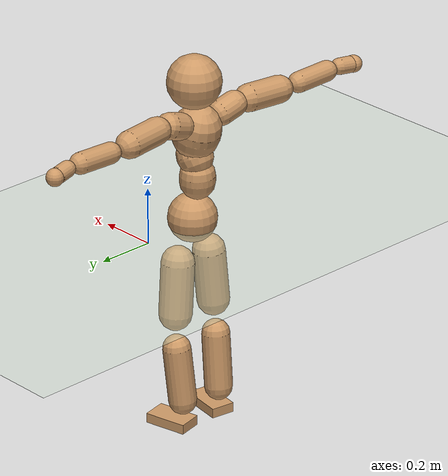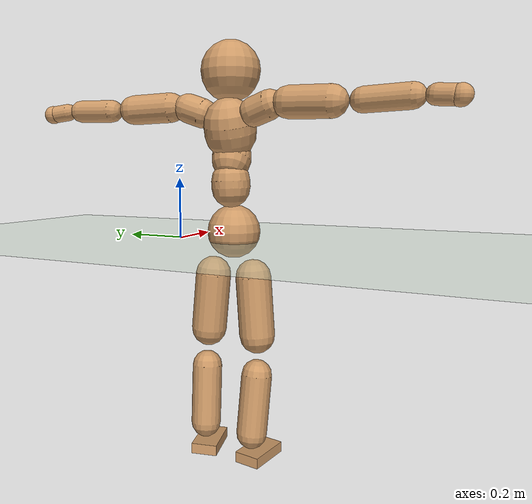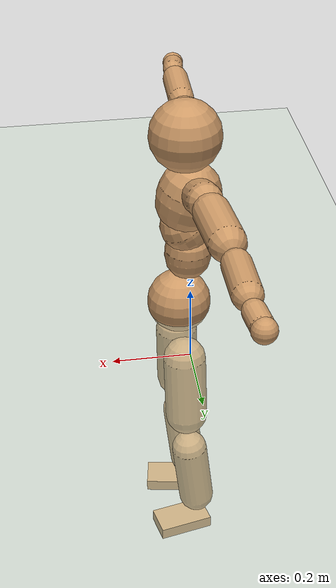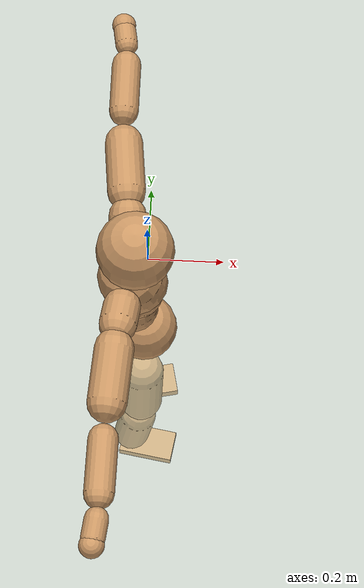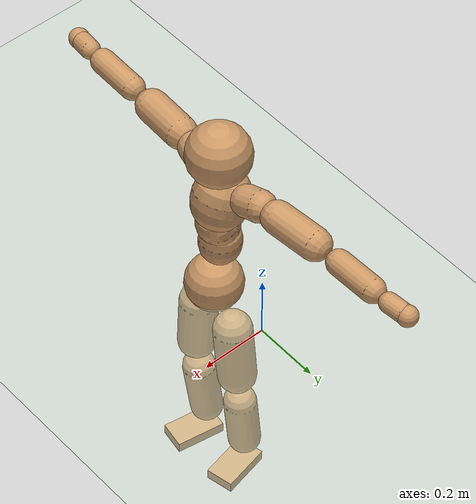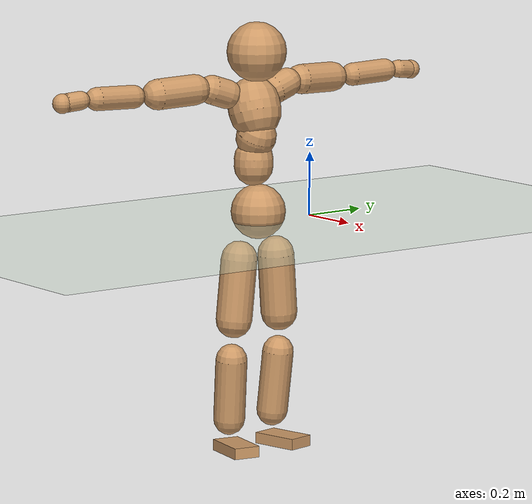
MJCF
<mujoco model="humanoid">
  <compiler coordinate="local"/>
  <default>
    <joint damping="0.0" armature="0.01" stiffness="0.0" limited="true"/>
    <geom conaffinity="1" condim="3" contype="7" margin="0.001" rgba="0.8 0.6 .4 1"/>
  </default>
  <asset>
    <texture type="skybox" builtin="gradient" rgb1=".4 .5 .6" rgb2="0 0 0" width="100" height="100"/>
    <texture builtin="flat" height="1278" mark="cross" markrgb="1 1 1" name="texgeom" random="0.01" rgb1="0.8 0.6 0.4" rgb2="0.8 0.6 0.4" type="cube" width="127"/>
    <texture builtin="checker" height="100" name="texplane" rgb1="0 0 0" rgb2="0.8 0.8 0.8" type="2d" width="100"/>
    <material name="MatPlane" reflectance="0.5" shininess="1" specular="1" texrepeat="60 60" texture="texplane"/>
    <material name="geom" texture="texgeom" texuniform="true"/>
  </asset>
  <worldbody>
    <light cutoff="100" diffuse="1 1 1" dir="-0 0 -1.3" directional="true" exponent="1" pos="0 0 1.3" specular=".1 .1 .1"/>
    <geom conaffinity="1" condim="3" name="floor" pos="0 0 0" rgba="0.8 0.9 0.8 1" size="100 100 .2" type="plane" material="MatPlane"/>
    <body name="Pelvis" pos="-0.0006 -0.2011 0.0315">
      <freejoint name="Pelvis"/>
      <geom type="sphere" contype="1" conaffinity="1" density="500" size="0.0859" pos="0.0000 0.0000 0.0000" name="Pelvis"/>
      <body name="L_Hip" pos="-0.0037 0.0674 -0.081">
        <joint name="L_Hip_x" type="hinge" pos="0 0 0" axis="1 0 0" stiffness="800" damping="80" armature="0.02" range="-180.0000 180.0000"/>
        <joint name="L_Hip_y" type="hinge" pos="0 0 0" axis="0 1 0" stiffness="800" damping="80" armature="0.02" range="-180.0000 180.0000"/>
        <joint name="L_Hip_z" type="hinge" pos="0 0 0" axis="0 0 1" stiffness="800" damping="80" armature="0.02" range="-180.0000 180.0000"/>
        <geom type="capsule" contype="1" conaffinity="1" density="500" fromto="-0.0011 0.0050 -0.0625 -0.0044 0.0200 -0.2500" size="0.0578" name="L_Hip"/>
        <body name="L_Knee" pos="-0.0055 0.0249 -0.3126">
          <joint name="L_Knee_x" type="hinge" pos="0 0 0" axis="1 0 0" stiffness="800" damping="80" armature="0.02" range="-180.0000 180.0000"/>
          <joint name="L_Knee_y" type="hinge" pos="0 0 0" axis="0 1 0" stiffness="800" damping="80" armature="0.02" range="-180.0000 180.0000"/>
          <joint name="L_Knee_z" type="hinge" pos="0 0 0" axis="0 0 1" stiffness="800" damping="80" armature="0.02" range="-180.0000 180.0000"/>
          <geom type="capsule" contype="1" conaffinity="1" density="500" fromto="-0.0074 -0.0020 -0.0647 -0.0298 -0.0080 -0.2587" size="0.0492" name="L_Knee"/>
          <body name="L_Ankle" pos="-0.0372 -0.0099 -0.3234">
            <joint name="L_Ankle_x" type="hinge" pos="0 0 0" axis="1 0 0" stiffness="800" damping="80" armature="0.02" range="-180.0000 180.0000"/>
            <joint name="L_Ankle_y" type="hinge" pos="0 0 0" axis="0 1 0" stiffness="800" damping="80" armature="0.02" range="-180.0000 180.0000"/>
            <joint name="L_Ankle_z" type="hinge" pos="0 0 0" axis="0 0 1" stiffness="800" damping="80" armature="0.02" range="-180.0000 180.0000"/>
            <geom type="box" contype="1" conaffinity="1" density="500" pos="0.0521 0.0112 -0.0236" size="0.0761 0.043 0.0174" quat="0.9944 0.0000 0.0000 0.1057" name="L_Ankle"/>
            <body name="L_Toe" pos="0.1043 0.0224 -0.0473">
              <joint name="L_Toe_x" type="hinge" pos="0 0 0" axis="1 0 0" stiffness="500" damping="50" armature="0.02" range="-180.0000 180.0000"/>
              <joint name="L_Toe_y" type="hinge" pos="0 0 0" axis="0 1 0" stiffness="500" damping="50" armature="0.02" range="-180.0000 180.0000"/>
              <joint name="L_Toe_z" type="hinge" pos="0 0 0" axis="0 0 1" stiffness="500" damping="50" armature="0.02" range="-180.0000 180.0000"/>
              <geom type="box" contype="1" conaffinity="1" density="500" pos="0.0000 0.0000 0.0237" size="0.0009 0.0022 0.0009" quat="0.9936 0.0000 0.0000 0.1127" name="L_Toe"/>
            </body>
          </body>
        </body>
      </body>
      <body name="R_Hip" pos="-0.0019 -0.0658 -0.0803">
        <joint name="R_Hip_x" type="hinge" pos="0 0 0" axis="1 0 0" stiffness="800" damping="80" armature="0.02" range="-180.0000 180.0000"/>
        <joint name="R_Hip_y" type="hinge" pos="0 0 0" axis="0 1 0" stiffness="800" damping="80" armature="0.02" range="-180.0000 180.0000"/>
        <joint name="R_Hip_z" type="hinge" pos="0 0 0" axis="0 0 1" stiffness="800" damping="80" armature="0.02" range="-180.0000 180.0000"/>
        <geom type="capsule" contype="1" conaffinity="1" density="500" fromto="-0.0015 -0.0057 -0.0639 -0.0058 -0.0226 -0.2555" size="0.0573" name="R_Hip"/>
        <body name="R_Knee" pos="-0.0073 -0.0283 -0.3193">
          <joint name="R_Knee_x" type="hinge" pos="0 0 0" axis="1 0 0" stiffness="800" damping="80" armature="0.02" range="-180.0000 180.0000"/>
          <joint name="R_Knee_y" type="hinge" pos="0 0 0" axis="0 1 0" stiffness="800" damping="80" armature="0.02" range="-180.0000 180.0000"/>
          <joint name="R_Knee_z" type="hinge" pos="0 0 0" axis="0 0 1" stiffness="800" damping="80" armature="0.02" range="-180.0000 180.0000"/>
          <geom type="capsule" contype="1" conaffinity="1" density="500" fromto="-0.0073 0.0023 -0.0649 -0.0292 0.0093 -0.2596" size="0.0496" name="R_Knee"/>
          <body name="R_Ankle" pos="-0.0365 0.0116 -0.3245">
            <joint name="R_Ankle_x" type="hinge" pos="0 0 0" axis="1 0 0" stiffness="800" damping="80" armature="0.02" range="-180.0000 180.0000"/>
            <joint name="R_Ankle_y" type="hinge" pos="0 0 0" axis="0 1 0" stiffness="800" damping="80" armature="0.02" range="-180.0000 180.0000"/>
            <joint name="R_Ankle_z" type="hinge" pos="0 0 0" axis="0 0 1" stiffness="800" damping="80" armature="0.02" range="-180.0000 180.0000"/>
            <geom type="box" contype="1" conaffinity="1" density="500" pos="0.0536 -0.0089 -0.0198" size="0.0761 0.0427 0.0174" quat="0.9966 0.0000 0.0000 -0.0825" name="R_Ankle"/>
            <body name="R_Toe" pos="0.1071 -0.0178 -0.0397">
              <joint name="R_Toe_x" type="hinge" pos="0 0 0" axis="1 0 0" stiffness="500" damping="50" armature="0.02" range="-180.0000 180.0000"/>
              <joint name="R_Toe_y" type="hinge" pos="0 0 0" axis="0 1 0" stiffness="500" damping="50" armature="0.02" range="-180.0000 180.0000"/>
              <joint name="R_Toe_z" type="hinge" pos="0 0 0" axis="0 0 1" stiffness="500" damping="50" armature="0.02" range="-180.0000 180.0000"/>
              <geom type="box" contype="1" conaffinity="1" density="500" pos="0.0000 0.0000 0.0211" size="0.0009 0.0022 0.0009" quat="0.9974 0.0000 0.0000 -0.0721" name="R_Toe"/>
            </body>
          </body>
        </body>
      </body>
      <body name="Torso" pos="-0.0225 -0.0019 0.0935">
        <joint name="Torso_x" type="hinge" pos="0 0 0" axis="1 0 0" stiffness="1000" damping="100" armature="0.02" range="-180.0000 180.0000"/>
        <joint name="Torso_y" type="hinge" pos="0 0 0" axis="0 1 0" stiffness="1000" damping="100" armature="0.02" range="-180.0000 180.0000"/>
        <joint name="Torso_z" type="hinge" pos="0 0 0" axis="0 0 1" stiffness="1000" damping="100" armature="0.02" range="-180.0000 180.0000"/>
        <geom type="capsule" contype="1" conaffinity="1" density="500" fromto="-0.0017 0.0016 0.0701 -0.0011 0.0011 0.0467" size="0.061659" name="Torso"/>
        <body name="Spine" pos="-0.0028 0.0027 0.1168">
          <joint name="Spine_x" type="hinge" pos="0 0 0" axis="1 0 0" stiffness="1000" damping="100" armature="0.02" range="-180.0000 180.0000"/>
          <joint name="Spine_y" type="hinge" pos="0 0 0" axis="0 1 0" stiffness="1000" damping="100" armature="0.02" range="-180.0000 180.0000"/>
          <joint name="Spine_z" type="hinge" pos="0 0 0" axis="0 0 1" stiffness="1000" damping="100" armature="0.02" range="-180.0000 180.0000"/>
          <geom type="capsule" contype="1" conaffinity="1" density="500" fromto="0.0138 0.0014 0.0269 0.0092 0.0009 0.0179" size="0.062682" name="Spine"/>
          <body name="Chest" pos="0.023 0.0023 0.0448">
            <joint name="Chest_x" type="hinge" pos="0 0 0" axis="1 0 0" stiffness="1000" damping="100" armature="0.02" range="-180.0000 180.0000"/>
            <joint name="Chest_y" type="hinge" pos="0 0 0" axis="0 1 0" stiffness="1000" damping="100" armature="0.02" range="-180.0000 180.0000"/>
            <joint name="Chest_z" type="hinge" pos="0 0 0" axis="0 0 1" stiffness="1000" damping="100" armature="0.02" range="-180.0000 180.0000"/>
            <geom type="capsule" contype="1" conaffinity="1" density="500" fromto="-0.0263 -0.0006 0.0828 -0.0176 -0.0004 0.0552" size="0.082398" name="Chest"/>
            <body name="Neck" pos="-0.0551 -0.001 0.1923">
              <joint name="Neck_x" type="hinge" pos="0 0 0" axis="1 0 0" stiffness="500" damping="50" armature="0.02" range="-180.0000 180.0000"/>
              <joint name="Neck_y" type="hinge" pos="0 0 0" axis="0 1 0" stiffness="500" damping="50" armature="0.02" range="-180.0000 180.0000"/>
              <joint name="Neck_z" type="hinge" pos="0 0 0" axis="0 0 1" stiffness="500" damping="50" armature="0.02" range="-180.0000 180.0000"/>
              <geom type="capsule" contype="1" conaffinity="1" density="500" fromto="0.0083 0.0006 0.0104 0.0334 0.0026 0.0418" size="0.035712" name="Neck"/>
              <body name="Head" pos="0.0417 0.0032 0.0522">
                <joint name="Head_x" type="hinge" pos="0 0 0" axis="1 0 0" stiffness="500" damping="50" armature="0.02" range="-180.0000 180.0000"/>
                <joint name="Head_y" type="hinge" pos="0 0 0" axis="0 1 0" stiffness="500" damping="50" armature="0.02" range="-180.0000 180.0000"/>
                <joint name="Head_z" type="hinge" pos="0 0 0" axis="0 0 1" stiffness="500" damping="50" armature="0.02" range="-180.0000 180.0000"/>
                <geom type="sphere" contype="1" conaffinity="1" density="500" size="0.0936" pos="0.0000 0.0000 0.0000" name="Head"/>
              </body>
            </body>
            <body name="L_Thorax" pos="-0.0358 0.0711 0.1121">
              <joint name="L_Thorax_x" type="hinge" pos="0 0 0" axis="1 0 0" stiffness="500" damping="50" armature="0.02" range="-180.0000 180.0000"/>
              <joint name="L_Thorax_y" type="hinge" pos="0 0 0" axis="0 1 0" stiffness="500" damping="50" armature="0.02" range="-180.0000 180.0000"/>
              <joint name="L_Thorax_z" type="hinge" pos="0 0 0" axis="0 0 1" stiffness="500" damping="50" armature="0.02" range="-180.0000 180.0000"/>
              <geom type="capsule" contype="1" conaffinity="1" density="500" fromto="-0.0011 0.0167 0.0057 -0.0045 0.0668 0.0230" size="0.0464" name="L_Thorax"/>
              <body name="L_Shoulder" pos="-0.0056 0.0835 0.0287">
                <joint name="L_Shoulder_x" type="hinge" pos="0 0 0" axis="1 0 0" stiffness="500" damping="50" armature="0.02" range="-720.0000 720.0000"/>
                <joint name="L_Shoulder_y" type="hinge" pos="0 0 0" axis="0 1 0" stiffness="500" damping="50" armature="0.02" range="-720.0000 720.0000"/>
                <joint name="L_Shoulder_z" type="hinge" pos="0 0 0" axis="0 0 1" stiffness="500" damping="50" armature="0.02" range="-720.0000 720.0000"/>
                <geom type="capsule" contype="1" conaffinity="1" density="500" fromto="-0.0046 0.0444 -0.0012 -0.0183 0.1778 -0.0050" size="0.0471" name="L_Shoulder"/>
                <body name="L_Elbow" pos="-0.0229 0.2222 -0.0062">
                  <joint name="L_Elbow_x" type="hinge" pos="0 0 0" axis="1 0 0" stiffness="500" damping="50" armature="0.02" range="-720.0000 720.0000"/>
                  <joint name="L_Elbow_y" type="hinge" pos="0 0 0" axis="0 1 0" stiffness="500" damping="50" armature="0.02" range="-720.0000 720.0000"/>
                  <joint name="L_Elbow_z" type="hinge" pos="0 0 0" axis="0 0 1" stiffness="500" damping="50" armature="0.02" range="-720.0000 720.0000"/>
                  <geom type="capsule" contype="1" conaffinity="1" density="500" fromto="0.0000 0.0427 0.0012 0.0001 0.1709 0.0050" size="0.0365" name="L_Elbow"/>
                  <body name="L_Wrist" pos="0.0001 0.2137 0.0062">
                    <joint name="L_Wrist_x" type="hinge" pos="0 0 0" axis="1 0 0" stiffness="300" damping="30" armature="0.02" range="-180.0000 180.0000"/>
                    <joint name="L_Wrist_y" type="hinge" pos="0 0 0" axis="0 1 0" stiffness="300" damping="30" armature="0.02" range="-180.0000 180.0000"/>
                    <joint name="L_Wrist_z" type="hinge" pos="0 0 0" axis="0 0 1" stiffness="300" damping="30" armature="0.02" range="-180.0000 180.0000"/>
                    <geom type="capsule" contype="1" conaffinity="1" density="500" fromto="-0.0024 0.0149 -0.0018 -0.0098 0.0595 -0.0072" size="0.0283" name="L_Wrist"/>
                    <body name="L_Hand" pos="-0.0122 0.0744 -0.0089">
                      <joint name="L_Hand_x" type="hinge" pos="0 0 0" axis="1 0 0" stiffness="300" damping="30" armature="0.02" range="-180.0000 180.0000"/>
                      <joint name="L_Hand_y" type="hinge" pos="0 0 0" axis="0 1 0" stiffness="300" damping="30" armature="0.02" range="-180.0000 180.0000"/>
                      <joint name="L_Hand_z" type="hinge" pos="0 0 0" axis="0 0 1" stiffness="300" damping="30" armature="0.02" range="-180.0000 180.0000"/>
                      <geom type="sphere" contype="1" conaffinity="1" density="500" size="0.0301" pos="0.0000 0.0000 0.0000" name="L_Hand"/>
                    </body>
                  </body>
                </body>
              </body>
            </body>
            <body name="R_Thorax" pos="-0.0408 -0.0732 0.1097">
              <joint name="R_Thorax_x" type="hinge" pos="0 0 0" axis="1 0 0" stiffness="500" damping="50" armature="0.02" range="-180.0000 180.0000"/>
              <joint name="R_Thorax_y" type="hinge" pos="0 0 0" axis="0 1 0" stiffness="500" damping="50" armature="0.02" range="-180.0000 180.0000"/>
              <joint name="R_Thorax_z" type="hinge" pos="0 0 0" axis="0 0 1" stiffness="500" damping="50" armature="0.02" range="-180.0000 180.0000"/>
              <geom type="capsule" contype="1" conaffinity="1" density="500" fromto="-0.0021 -0.0176 0.0059 -0.0085 -0.0705 0.0235" size="0.0457" name="R_Thorax"/>
              <body name="R_Shoulder" pos="-0.0107 -0.0881 0.0294">
                <joint name="R_Shoulder_x" type="hinge" pos="0 0 0" axis="1 0 0" stiffness="500" damping="50" armature="0.02" range="-720.0000 720.0000"/>
                <joint name="R_Shoulder_y" type="hinge" pos="0 0 0" axis="0 1 0" stiffness="500" damping="50" armature="0.02" range="-720.0000 720.0000"/>
                <joint name="R_Shoulder_z" type="hinge" pos="0 0 0" axis="0 0 1" stiffness="500" damping="50" armature="0.02" range="-720.0000 720.0000"/>
                <geom type="capsule" contype="1" conaffinity="1" density="500" fromto="-0.0032 -0.0441 -0.0016 -0.0128 -0.1765 -0.0066" size="0.0481" name="R_Shoulder"/>
                <body name="R_Elbow" pos="-0.016 -0.2207 -0.0082">
                  <joint name="R_Elbow_x" type="hinge" pos="0 0 0" axis="1 0 0" stiffness="500" damping="50" armature="0.02" range="-720.0000 720.0000"/>
                  <joint name="R_Elbow_y" type="hinge" pos="0 0 0" axis="0 1 0" stiffness="500" damping="50" armature="0.02" range="-720.0000 720.0000"/>
                  <joint name="R_Elbow_z" type="hinge" pos="0 0 0" axis="0 0 1" stiffness="500" damping="50" armature="0.02" range="-720.0000 720.0000"/>
                  <geom type="capsule" contype="1" conaffinity="1" density="500" fromto="-0.0006 -0.0440 0.0013 -0.0026 -0.1760 0.0051" size="0.0363" name="R_Elbow"/>
                  <body name="R_Wrist" pos="-0.0032 -0.22 0.0064">
                    <joint name="R_Wrist_x" type="hinge" pos="0 0 0" axis="1 0 0" stiffness="300" damping="30" armature="0.02" range="-180.0000 180.0000"/>
                    <joint name="R_Wrist_y" type="hinge" pos="0 0 0" axis="0 1 0" stiffness="300" damping="30" armature="0.02" range="-180.0000 180.0000"/>
                    <joint name="R_Wrist_z" type="hinge" pos="0 0 0" axis="0 0 1" stiffness="300" damping="30" armature="0.02" range="-180.0000 180.0000"/>
                    <geom type="capsule" contype="1" conaffinity="1" density="500" fromto="-0.0019 -0.0151 -0.0014 -0.0078 -0.0603 -0.0054" size="0.0291" name="R_Wrist"/>
                    <body name="R_Hand" pos="-0.0097 -0.0754 -0.0068">
                      <joint name="R_Hand_x" type="hinge" pos="0 0 0" axis="1 0 0" stiffness="300" damping="30" armature="0.02" range="-180.0000 180.0000"/>
                      <joint name="R_Hand_y" type="hinge" pos="0 0 0" axis="0 1 0" stiffness="300" damping="30" armature="0.02" range="-180.0000 180.0000"/>
                      <joint name="R_Hand_z" type="hinge" pos="0 0 0" axis="0 0 1" stiffness="300" damping="30" armature="0.02" range="-180.0000 180.0000"/>
                      <geom type="sphere" contype="1" conaffinity="1" density="500" size="0.0304" pos="0.0000 0.0000 0.0000" name="R_Hand"/>
                    </body>
                  </body>
                </body>
              </body>
            </body>
          </body>
        </body>
      </body>
    </body>
  </worldbody>
  <actuator>
    <motor name="L_Hip_x" joint="L_Hip_x" gear="500"/>
    <motor name="L_Hip_y" joint="L_Hip_y" gear="500"/>
    <motor name="L_Hip_z" joint="L_Hip_z" gear="500"/>
    <motor name="L_Knee_x" joint="L_Knee_x" gear="500"/>
    <motor name="L_Knee_y" joint="L_Knee_y" gear="500"/>
    <motor name="L_Knee_z" joint="L_Knee_z" gear="500"/>
    <motor name="L_Ankle_x" joint="L_Ankle_x" gear="500"/>
    <motor name="L_Ankle_y" joint="L_Ankle_y" gear="500"/>
    <motor name="L_Ankle_z" joint="L_Ankle_z" gear="500"/>
    <motor name="L_Toe_x" joint="L_Toe_x" gear="500"/>
    <motor name="L_Toe_y" joint="L_Toe_y" gear="500"/>
    <motor name="L_Toe_z" joint="L_Toe_z" gear="500"/>
    <motor name="R_Hip_x" joint="R_Hip_x" gear="500"/>
    <motor name="R_Hip_y" joint="R_Hip_y" gear="500"/>
    <motor name="R_Hip_z" joint="R_Hip_z" gear="500"/>
    <motor name="R_Knee_x" joint="R_Knee_x" gear="500"/>
    <motor name="R_Knee_y" joint="R_Knee_y" gear="500"/>
    <motor name="R_Knee_z" joint="R_Knee_z" gear="500"/>
    <motor name="R_Ankle_x" joint="R_Ankle_x" gear="500"/>
    <motor name="R_Ankle_y" joint="R_Ankle_y" gear="500"/>
    <motor name="R_Ankle_z" joint="R_Ankle_z" gear="500"/>
    <motor name="R_Toe_x" joint="R_Toe_x" gear="500"/>
    <motor name="R_Toe_y" joint="R_Toe_y" gear="500"/>
    <motor name="R_Toe_z" joint="R_Toe_z" gear="500"/>
    <motor name="Torso_x" joint="Torso_x" gear="500"/>
    <motor name="Torso_y" joint="Torso_y" gear="500"/>
    <motor name="Torso_z" joint="Torso_z" gear="500"/>
    <motor name="Spine_x" joint="Spine_x" gear="500"/>
    <motor name="Spine_y" joint="Spine_y" gear="500"/>
    <motor name="Spine_z" joint="Spine_z" gear="500"/>
    <motor name="Chest_x" joint="Chest_x" gear="500"/>
    <motor name="Chest_y" joint="Chest_y" gear="500"/>
    <motor name="Chest_z" joint="Chest_z" gear="500"/>
    <motor name="Neck_x" joint="Neck_x" gear="500"/>
    <motor name="Neck_y" joint="Neck_y" gear="500"/>
    <motor name="Neck_z" joint="Neck_z" gear="500"/>
    <motor name="Head_x" joint="Head_x" gear="500"/>
    <motor name="Head_y" joint="Head_y" gear="500"/>
    <motor name="Head_z" joint="Head_z" gear="500"/>
    <motor name="L_Thorax_x" joint="L_Thorax_x" gear="500"/>
    <motor name="L_Thorax_y" joint="L_Thorax_y" gear="500"/>
    <motor name="L_Thorax_z" joint="L_Thorax_z" gear="500"/>
    <motor name="L_Shoulder_x" joint="L_Shoulder_x" gear="500"/>
    <motor name="L_Shoulder_y" joint="L_Shoulder_y" gear="500"/>
    <motor name="L_Shoulder_z" joint="L_Shoulder_z" gear="500"/>
    <motor name="L_Elbow_x" joint="L_Elbow_x" gear="500"/>
    <motor name="L_Elbow_y" joint="L_Elbow_y" gear="500"/>
    <motor name="L_Elbow_z" joint="L_Elbow_z" gear="500"/>
    <motor name="L_Wrist_x" joint="L_Wrist_x" gear="500"/>
    <motor name="L_Wrist_y" joint="L_Wrist_y" gear="500"/>
    <motor name="L_Wrist_z" joint="L_Wrist_z" gear="500"/>
    <motor name="L_Hand_x" joint="L_Hand_x" gear="500"/>
    <motor name="L_Hand_y" joint="L_Hand_y" gear="500"/>
    <motor name="L_Hand_z" joint="L_Hand_z" gear="500"/>
    <motor name="R_Thorax_x" joint="R_Thorax_x" gear="500"/>
    <motor name="R_Thorax_y" joint="R_Thorax_y" gear="500"/>
    <motor name="R_Thorax_z" joint="R_Thorax_z" gear="500"/>
    <motor name="R_Shoulder_x" joint="R_Shoulder_x" gear="500"/>
    <motor name="R_Shoulder_y" joint="R_Shoulder_y" gear="500"/>
    <motor name="R_Shoulder_z" joint="R_Shoulder_z" gear="500"/>
    <motor name="R_Elbow_x" joint="R_Elbow_x" gear="500"/>
    <motor name="R_Elbow_y" joint="R_Elbow_y" gear="500"/>
    <motor name="R_Elbow_z" joint="R_Elbow_z" gear="500"/>
    <motor name="R_Wrist_x" joint="R_Wrist_x" gear="500"/>
    <motor name="R_Wrist_y" joint="R_Wrist_y" gear="500"/>
    <motor name="R_Wrist_z" joint="R_Wrist_z" gear="500"/>
    <motor name="R_Hand_x" joint="R_Hand_x" gear="500"/>
    <motor name="R_Hand_y" joint="R_Hand_y" gear="500"/>
    <motor name="R_Hand_z" joint="R_Hand_z" gear="500"/>
  </actuator>
  <contact>
    <exclude body1="Torso" body2="Chest"/>
    <exclude body1="Head" body2="Chest"/>
    <exclude body1="R_Knee" body2="R_Toe"/>
    <exclude body1="R_Knee" body2="L_Ankle"/>
    <exclude body1="R_Knee" body2="L_Toe"/>
    <exclude body1="L_Knee" body2="L_Toe"/>
    <exclude body1="L_Knee" body2="R_Ankle"/>
    <exclude body1="L_Knee" body2="R_Toe"/>
    <exclude body1="L_Shoulder" body2="Chest"/>
    <exclude body1="R_Shoulder" body2="Chest"/>
  </contact>
  <sensor/>
  <size njmax="700" nconmax="700"/>
</mujoco>
